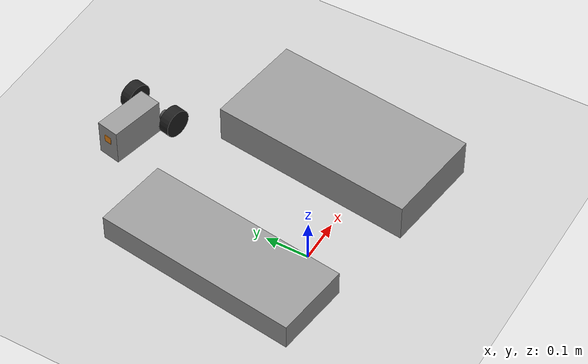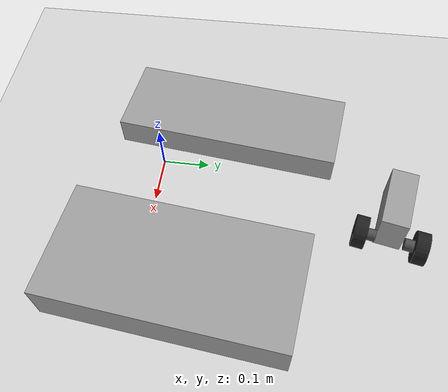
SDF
<sdf version="1.7">
 <world name="default">
  <physics type="ode">
   <max_step_size>0.001</max_step_size>
   <real_time_factor>1</real_time_factor>
   <real_time_update_rate>1000</real_time_update_rate>
  </physics>
  <light name="sun" type="directional">
   <pose>0 0 10 0 -0 0</pose>
   <diffuse>0.8 0.8 0.8 1</diffuse>
   <specular>0.2 0.2 0.2 1</specular>
   <attenuation>
    <range>1000</range>
    <constant>0.9</constant>
    <linear>0.01</linear>
    <quadratic>0.001</quadratic>
   </attenuation>
   <direction>-0.5 0.1 -0.9</direction>
   <spot><inner_angle>0</inner_angle><outer_angle>0</outer_angle><falloff>0</falloff></spot>
  </light>
  <model name="ground_plane">
   <static>1</static>
   <link name="link">
    <collision name="collision">
     <geometry><plane><normal>0 0 1</normal><size>100 100</size></plane></geometry>
     <surface>
      <contact><collide_bitmask>65535</collide_bitmask></contact>
      <friction><ode><mu>100</mu><mu2>50</mu2></ode></friction>
     </surface>
    </collision>
    <visual name="visual">
     <cast_shadows>0</cast_shadows>
     <geometry><plane><normal>0 0 1</normal><size>100 100</size></plane></geometry>
     <material>
      <script><uri>file://media/materials/scripts/gazebo.material</uri><name>Gazebo/Grey</name></script>
     </material>
    </visual>
   </link>
  </model>
  <gravity>0 0 -9.8</gravity>
  <magnetic_field>6e-06 2.3e-05 -4.2e-05</magnetic_field>
  <atmosphere type="adiabatic"/>
  <scene><ambient>0.4 0.4 0.4 1</ambient><background>0.7 0.7 0.7 1</background><shadows>1</shadows></scene>
  <audio><device>default</device></audio>
  <spherical_coordinates>
   <surface_model>EARTH_WGS84</surface_model>
   <latitude_deg>0</latitude_deg>
   <longitude_deg>0</longitude_deg>
   <elevation>0</elevation>
   <heading_deg>0</heading_deg>
  </spherical_coordinates>
  <model name="two_wheel_balance_65mm">
   <link name="base_link">
    <inertial>
     <pose>-0.000913 0 0.058906 0 -0 0</pose>
     <mass>0.646</mass>
     <inertia>
      <ixx>0.00150668</ixx>
      <ixy>0</ixy>
      <ixz>-3.52843e-05</ixz>
      <iyy>0.00153232</iyy>
      <iyz>0</iyz>
      <izz>0.000559592</izz>
     </inertia>
    </inertial>
    <collision name="base_link_collision">
     <pose>0 0 0.075 0 -0 0</pose>
     <geometry><box><size>0.085 0.054 0.13</size></box></geometry>
    </collision>
    <collision name="base_link_fixed_joint_lump__battery_link_collision_1">
     <pose>-0.01 0 0.035 0 -0 0</pose>
     <geometry><box><size>0.052 0.034 0.018</size></box></geometry>
    </collision>
    <collision name="base_link_fixed_joint_lump__controller_board_link_collision_2">
     <pose>0.008 0 0.11 0 -0 0</pose>
     <geometry><box><size>0.055 0.038 0.006</size></box></geometry>
    </collision>
    <collision name="base_link_fixed_joint_lump__imu_link_collision_3">
     <pose>0.01 0 0.138 0 -0 0</pose>
     <geometry><box><size>0.018 0.018 0.006</size></box></geometry>
    </collision>
    <collision name="base_link_fixed_joint_lump__left_motor_link_collision_4">
     <pose>0 0.037 0 1.5708 -0 0</pose>
     <geometry><cylinder><length>0.018</length><radius>0.012</radius></cylinder></geometry>
    </collision>
    <collision name="base_link_fixed_joint_lump__right_motor_link_collision_5">
     <pose>0 -0.037 0 1.5708 -0 0</pose>
     <geometry><cylinder><length>0.018</length><radius>0.012</radius></cylinder></geometry>
    </collision>
    <visual name="base_link_visual">
     <pose>0 0 0.075 0 -0 0</pose>
     <geometry><box><size>0.085 0.054 0.13</size></box></geometry>
     <material>
      <script><name>Gazebo/Grey</name><uri>file://media/materials/scripts/gazebo.material</uri></script>
     </material>
    </visual>
    <visual name="base_link_fixed_joint_lump__battery_link_visual_1">
     <pose>-0.01 0 0.035 0 -0 0</pose>
     <geometry><box><size>0.052 0.034 0.018</size></box></geometry>
     <material>
      <script><name>Gazebo/Blue</name><uri>file://media/materials/scripts/gazebo.material</uri></script>
     </material>
    </visual>
    <visual name="base_link_fixed_joint_lump__controller_board_link_visual_2">
     <pose>0.008 0 0.11 0 -0 0</pose>
     <geometry><box><size>0.055 0.038 0.006</size></box></geometry>
     <material>
      <script><name>Gazebo/Green</name><uri>file://media/materials/scripts/gazebo.material</uri></script>
     </material>
    </visual>
    <visual name="base_link_fixed_joint_lump__imu_link_visual_3">
     <pose>0.01 0 0.138 0 -0 0</pose>
     <geometry><box><size>0.018 0.018 0.006</size></box></geometry>
     <material>
      <script><name>Gazebo/Orange</name><uri>file://media/materials/scripts/gazebo.material</uri></script>
     </material>
    </visual>
    <visual name="base_link_fixed_joint_lump__left_motor_link_visual_4">
     <pose>0 0.037 0 1.5708 -0 0</pose>
     <geometry><cylinder><length>0.018</length><radius>0.012</radius></cylinder></geometry>
     <material>
      <script><name>Gazebo/DarkGrey</name><uri>file://media/materials/scripts/gazebo.material</uri></script>
     </material>
    </visual>
    <visual name="base_link_fixed_joint_lump__right_motor_link_visual_5">
     <pose>0 -0.037 0 1.5708 -0 0</pose>
     <geometry><cylinder><length>0.018</length><radius>0.012</radius></cylinder></geometry>
     <material>
      <script><name>Gazebo/DarkGrey</name><uri>file://media/materials/scripts/gazebo.material</uri></script>
     </material>
    </visual>
    <sensor name="imu_sensor" type="imu">
     <always_on>1</always_on>
     <update_rate>250</update_rate>
     <visualize>0</visualize>
     <imu>
      <angular_velocity>
       <x>
        <noise type="gaussian">
         <mean>0</mean>
         <stddev>0.0002</stddev>
         <bias_mean>0</bias_mean>
         <bias_stddev>2e-05</bias_stddev>
        </noise>
       </x>
       <y>
        <noise type="gaussian">
         <mean>0</mean>
         <stddev>0.0002</stddev>
         <bias_mean>0</bias_mean>
         <bias_stddev>2e-05</bias_stddev>
        </noise>
       </y>
       <z>
        <noise type="gaussian">
         <mean>0</mean>
         <stddev>0.0002</stddev>
         <bias_mean>0</bias_mean>
         <bias_stddev>2e-05</bias_stddev>
        </noise>
       </z>
      </angular_velocity>
      <linear_acceleration>
       <x>
        <noise type="gaussian">
         <mean>0</mean>
         <stddev>0.001</stddev>
         <bias_mean>0</bias_mean>
         <bias_stddev>0.0001</bias_stddev>
        </noise>
       </x>
       <y>
        <noise type="gaussian">
         <mean>0</mean>
         <stddev>0.001</stddev>
         <bias_mean>0</bias_mean>
         <bias_stddev>0.0001</bias_stddev>
        </noise>
       </y>
       <z>
        <noise type="gaussian">
         <mean>0</mean>
         <stddev>0.001</stddev>
         <bias_mean>0</bias_mean>
         <bias_stddev>0.0001</bias_stddev>
        </noise>
       </z>
      </linear_acceleration>
     </imu>
     <plugin name="imu_plugin" filename="libgazebo_ros_imu_sensor.so">
      <ros><namespace>imu</namespace><remapping>~/out:=data</remapping></ros>
      <frame_name>imu_link</frame_name>
      <initial_orientation_as_reference>0</initial_orientation_as_reference>
     </plugin>
     <pose>0.01 0 0.138 0 -0 0</pose>
    </sensor>
   </link>
   <joint name="left_wheel_joint" type="revolute">
    <pose relative_to="base_link">0 0.059 0 0 -0 0</pose>
    <parent>base_link</parent>
    <child>left_wheel_link</child>
    <axis>
     <xyz>0 1 0</xyz>
     <limit><effort>2.5</effort><velocity>35</velocity><lower>-1e+16</lower><upper>1e+16</upper></limit>
     <dynamics>
      <damping>0.002</damping>
      <friction>0.001</friction>
      <spring_reference>0</spring_reference>
      <spring_stiffness>0</spring_stiffness>
     </dynamics>
    </axis>
   </joint>
   <link name="left_wheel_link">
    <pose relative_to="left_wheel_joint">0 0 0 0 -0 0</pose>
    <inertial>
     <mass>0.055</mass>
     <inertia>
      <ixx>1.76218e-05</ixx>
      <ixy>0</ixy>
      <ixz>0</ixz>
      <iyy>2.90469e-05</iyy>
      <iyz>0</iyz>
      <izz>1.76218e-05</izz>
     </inertia>
    </inertial>
    <collision name="left_wheel_link_collision">
     <pose>0 0 0 1.5708 -0 0</pose>
     <geometry><cylinder><length>0.026</length><radius>0.0325</radius></cylinder></geometry>
     <surface>
      <contact><ode><kp>1e+06</kp><kd>4</kd><max_vel>0.1</max_vel><min_depth>0.001</min_depth></ode></contact>
      <friction><ode><mu>1.45</mu><mu2>0.85</mu2></ode></friction>
     </surface>
    </collision>
    <visual name="left_wheel_link_visual">
     <pose>0 0 0 1.5708 -0 0</pose>
     <geometry><cylinder><length>0.026</length><radius>0.0325</radius></cylinder></geometry>
     <material>
      <script><name>Gazebo/Black</name><uri>file://media/materials/scripts/gazebo.material</uri></script>
     </material>
    </visual>
   </link>
   <joint name="right_wheel_joint" type="revolute">
    <pose relative_to="base_link">0 -0.059 0 0 -0 0</pose>
    <parent>base_link</parent>
    <child>right_wheel_link</child>
    <axis>
     <xyz>0 1 0</xyz>
     <limit><effort>2.5</effort><velocity>35</velocity><lower>-1e+16</lower><upper>1e+16</upper></limit>
     <dynamics>
      <damping>0.002</damping>
      <friction>0.001</friction>
      <spring_reference>0</spring_reference>
      <spring_stiffness>0</spring_stiffness>
     </dynamics>
    </axis>
   </joint>
   <link name="right_wheel_link">
    <pose relative_to="right_wheel_joint">0 0 0 0 -0 0</pose>
    <inertial>
     <mass>0.055</mass>
     <inertia>
      <ixx>1.76218e-05</ixx>
      <ixy>0</ixy>
      <ixz>0</ixz>
      <iyy>2.90469e-05</iyy>
      <iyz>0</iyz>
      <izz>1.76218e-05</izz>
     </inertia>
    </inertial>
    <collision name="right_wheel_link_collision">
     <pose>0 0 0 1.5708 -0 0</pose>
     <geometry><cylinder><length>0.026</length><radius>0.0325</radius></cylinder></geometry>
     <surface>
      <contact><ode><kp>1e+06</kp><kd>4</kd><max_vel>0.1</max_vel><min_depth>0.001</min_depth></ode></contact>
      <friction><ode><mu>1.45</mu><mu2>0.85</mu2></ode></friction>
     </surface>
    </collision>
    <visual name="right_wheel_link_visual">
     <pose>0 0 0 1.5708 -0 0</pose>
     <geometry><cylinder><length>0.026</length><radius>0.0325</radius></cylinder></geometry>
     <material>
      <script><name>Gazebo/Black</name><uri>file://media/materials/scripts/gazebo.material</uri></script>
     </material>
    </visual>
   </link>
   <static>0</static>
   <plugin name="gazebo_ros2_control" filename="libgazebo_ros2_control.so">
    <robot_param>robot_description</robot_param>
    <robot_param_node>robot_state_publisher</robot_param_node>
    <parameters>/home/lcoit/ros2_projects/self_balance_car_class/two_wheel_self_balance_car/install/balance_car_description/share/balance_car_description/config/ros2_control_balance_65mm.yaml</parameters>
   </plugin>
   <pose>0.169357 0.483366 0.042499 -2.15775 -1.57075 1.9498</pose>
  </model>
  <model name="unit_box">
   <pose>0.2875 0.081589 0.045016 0 0 -0.122367</pose>
   <link name="link">
    <inertial>
     <mass>1</mass>
     <inertia>
      <ixx>0.166667</ixx>
      <ixy>0</ixy>
      <ixz>0</ixz>
      <iyy>0.166667</iyy>
      <iyz>0</iyz>
      <izz>0.166667</izz>
     </inertia>
    </inertial>
    <collision name="collision">
     <geometry><box><size>0.235129 0.477045 0.090032</size></box></geometry>
    </collision>
    <visual name="visual">
     <geometry><box><size>0.235129 0.477045 0.090032</size></box></geometry>
     <material>
      <script><name>Gazebo/Grey</name><uri>file://media/materials/scripts/gazebo.material</uri></script>
     </material>
    </visual>
   </link>
  </model>
  <model name="unit_box_clone">
   <pose>-0.109225 0.144837 0.030806 -0 -0 -0.127233</pose>
   <link name="link">
    <inertial>
     <mass>1</mass>
     <inertia>
      <ixx>0.166667</ixx>
      <ixy>0</ixy>
      <ixz>0</ixz>
      <iyy>0.166667</iyy>
      <iyz>0</iyz>
      <izz>0.166667</izz>
     </inertia>
    </inertial>
    <collision name="collision">
     <geometry><box><size>0.176214 0.477045 0.0616123</size></box></geometry>
    </collision>
    <visual name="visual">
     <geometry><box><size>0.176214 0.477045 0.0616123</size></box></geometry>
     <material>
      <script><name>Gazebo/Grey</name><uri>file://media/materials/scripts/gazebo.material</uri></script>
     </material>
    </visual>
   </link>
  </model>
 </world>
</sdf>
